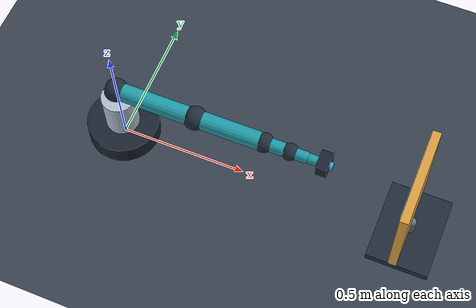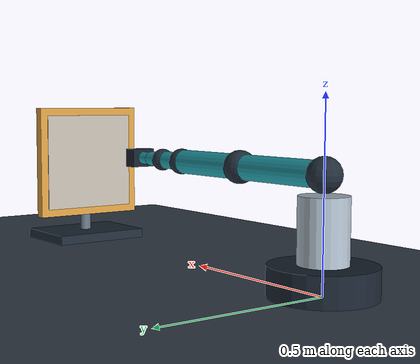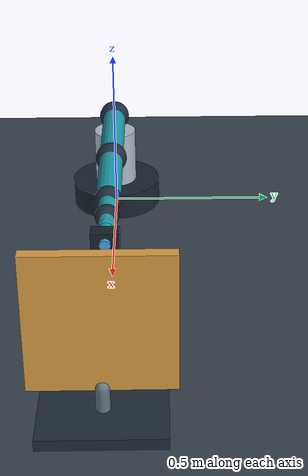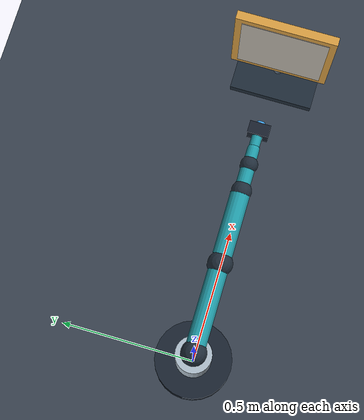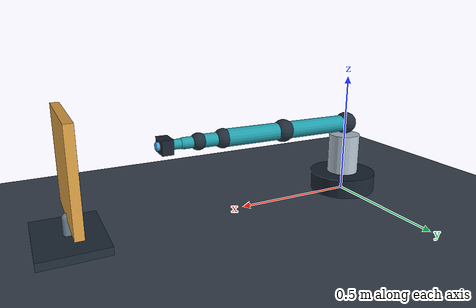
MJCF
<mujoco model="Visual servoing - six joint teaching arm">
  <compiler angle="degree" autolimits="true"/>
  <option timestep="0.002" integrator="implicitfast" gravity="0 0 -9.81"/>
  <visual>
    <global offwidth="640" offheight="480"/>
    <quality shadowsize="2048" offsamples="4"/>
    <headlight ambient="0.35 0.35 0.35" diffuse="0.6 0.6 0.6"/>
    <map znear="0.01" zfar="20"/>
  </visual>
  <statistic center="0.55 0 0.35" extent="1.6"/>
  <default>
    <joint damping="0.8" armature="0.015" limited="true"/>
    <geom friction="0.7 0.01 0.001" condim="3"/>
    <default class="arm">
      <!-- Physical contacts are enabled; adjacent welded/jointed parts use MuJoCo filtering. -->
      <geom type="capsule" size="0.035" rgba="0.13 0.62 0.67 1"
            contype="1" conaffinity="1" density="800"/>
    </default>
    <default class="joint_shell">
      <geom type="sphere" size="0.046" rgba="0.13 0.18 0.23 1"
            contype="1" conaffinity="1"/>
    </default>
  </default>
  <asset>
    <texture name="floor_tex" type="2d" builtin="checker" width="512" height="512"
             rgb1="0.19 0.23 0.28" rgb2="0.24 0.28 0.33"/>
    <material name="floor_mat" texture="floor_tex" texrepeat="10 10" reflectance="0.08"/>
    <texture name="marker_tex" type="2d" file="assets/marker.png"/>
    <texture name="natural_tex" type="2d" file="assets/natural-board.png"/>
    <material name="natural_mat" texture="natural_tex" texuniform="false"
              rgba="1 1 1 1" specular="0" shininess="0"/>
    <material name="marker_mat" texture="marker_tex" texuniform="false"
              rgba="1 1 1 1" specular="0" shininess="0"/>
  </asset>
  <worldbody>
    <light pos="0 -1 3" dir="0 0 -1" diffuse="0.8 0.8 0.8"/>
    <geom name="floor" type="plane" size="3 3 0.1" material="floor_mat"/>
    <geom name="base_plate" type="cylinder" pos="0 0 0.04" size="0.14 0.04"
          rgba="0.10 0.14 0.19 1"/>
    <geom name="pedestal" type="cylinder" pos="0 0 0.16" size="0.065 0.09"
          rgba="0.68 0.74 0.79 1"/>
    <!-- Optional mapped obstacle; enabled explicitly from the app or study. -->
    <body name="obstacle" mocap="true" pos="0.48 0.16 0.20">
      <geom name="obstacle_box" type="box" size="0.03 0.035 0.20"
            rgba="0.9 0.32 0.18 0" contype="0" conaffinity="0"/>
    </body>
    <body name="base_yaw" pos="0 0 0.30" gravcomp="1">
      <joint name="joint1" axis="0 0 1" range="-170 170"/>
      <geom name="base_shell" class="joint_shell"/>
      <body name="shoulder" gravcomp="1">
        <joint name="joint2" axis="0 1 0" range="-100 80"/>
        <geom name="upper_arm" class="arm" fromto="0 0 0 0.32 0 0"/>
        <body name="elbow" pos="0.32 0 0" gravcomp="1">
          <joint name="joint3" axis="0 1 0" range="-10 145"/>
          <geom name="elbow_shell" class="joint_shell"/>
          <geom name="forearm" class="arm" fromto="0 0 0 0.27 0 0"/>
          <body name="wrist_roll" pos="0.27 0 0" gravcomp="1">
            <joint name="joint4" axis="1 0 0" range="-170 170"/>
            <geom name="wrist_roll_shell" class="joint_shell" size="0.038"/>
            <geom name="wrist_roll_link" class="arm" fromto="0 0 0 0.10 0 0" size="0.026"/>
            <body name="wrist_pitch" pos="0.10 0 0" gravcomp="1">
              <joint name="joint5" axis="0 1 0" range="-100 100"/>
              <geom name="wrist_pitch_shell" class="joint_shell" size="0.033"/>
              <geom name="wrist_pitch_link" class="arm" fromto="0 0 0 0.06 0 0" size="0.022"/>
              <body name="tool_roll" pos="0.06 0 0" gravcomp="1">
                <joint name="joint6" axis="1 0 0" range="-170 170"/>
                <geom name="tool_link" class="arm" fromto="0 0 0 0.06 0 0" size="0.019"/>
                <body name="camera_mount" pos="0.07 0 0" gravcomp="1">
                  <geom name="camera_case" type="box" size="0.022 0.038 0.028"
                        rgba="0.10 0.13 0.18 1" contype="1" conaffinity="1" mass="0.08"/>
                  <geom name="lens" type="cylinder" size="0.015 0.007" pos="0.027 0 0"
                        euler="0 90 0" rgba="0.25 0.65 0.95 1" contype="1" conaffinity="1" mass="0.01"/>
                  <!-- MuJoCo camera looks along local -Z; +Y is image up.
                       Optical convention used in Python: +X right, +Y down, +Z forward. -->
                  <camera name="wrist" pos="0.04 0 0" xyaxes="0 -1 0 0 0 1" fovy="55"/>
                  <site name="camera_origin" pos="0.04 0 0" size="0.002" rgba="0 0 0 0"/>
                </body>
              </body>
            </body>
          </body>
        </body>
      </body>
    </body>
    <body name="target" pos="1.16 0 0.27">
      <geom name="target_frame" type="box" size="0.016 0.185 0.185" rgba="0.85 0.62 0.26 1"/>
      <!-- Flat marker board, viewed from the -X side. -->
      <geom name="target_board" type="box" pos="-0.018 0 0" size="0.001 0.16 0.16"
            material="marker_mat"/>
      <geom name="target_stand" type="capsule" fromto="0.015 0 -0.27 0.015 0 -0.18"
            size="0.018" rgba="0.4 0.46 0.52 1"/>
      <geom name="target_foot" type="box" pos="0.015 0 -0.255" size="0.12 0.16 0.015"
            rgba="0.12 0.17 0.22 1"/>
    </body>
  </worldbody>
  <actuator>
    <velocity name="drive1" joint="joint1" kv="40" ctrlrange="-0.6 0.6" forcerange="-50 50"/>
    <velocity name="drive2" joint="joint2" kv="40" ctrlrange="-0.6 0.6" forcerange="-50 50"/>
    <velocity name="drive3" joint="joint3" kv="30" ctrlrange="-0.6 0.6" forcerange="-35 35"/>
    <velocity name="drive4" joint="joint4" kv="15" ctrlrange="-0.6 0.6" forcerange="-15 15"/>
    <velocity name="drive5" joint="joint5" kv="15" ctrlrange="-0.6 0.6" forcerange="-15 15"/>
    <velocity name="drive6" joint="joint6" kv="10" ctrlrange="-0.6 0.6" forcerange="-10 10"/>
  </actuator>
  <keyframe>
    <!-- Keyframe qpos is always radians. -->
    <key name="home" qpos="0 -0.6981317008 1.3962634016 0 -0.6981317008 0"/>
  </keyframe>
</mujoco>
